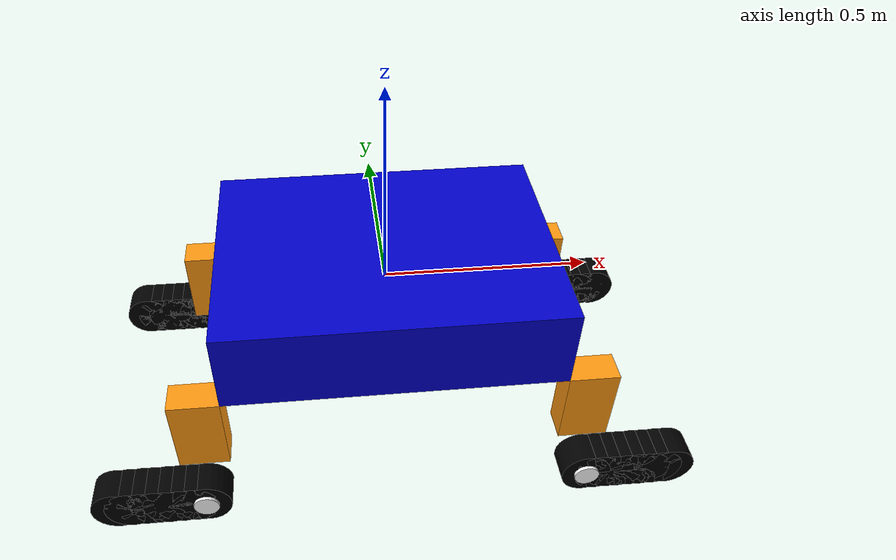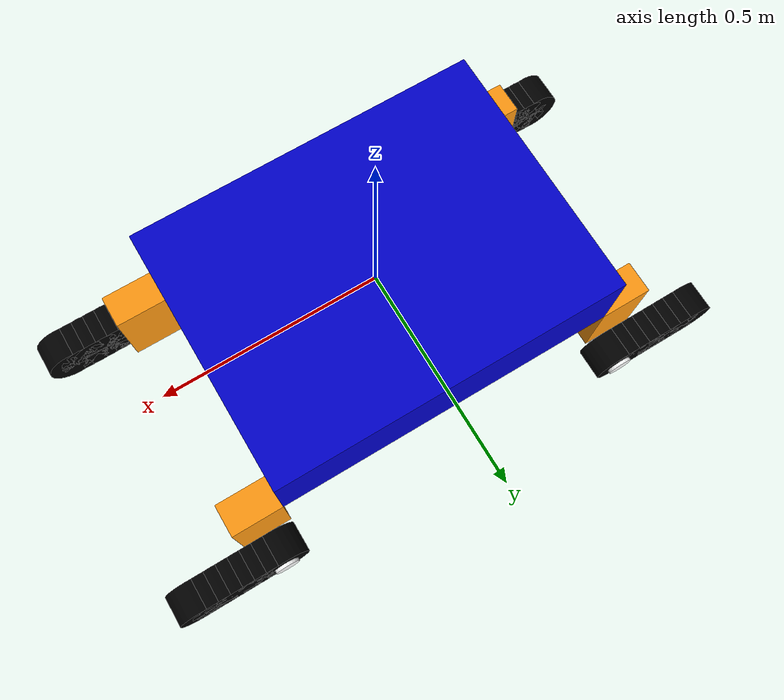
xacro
<?xml version="1.0"?>
<robot name="roscontrol" xmlns:xacro="http://ros.org/wiki/xacro">

  <material name="blue">
    <color rgba="0 0 0.8 1"/>
  </material>
  <material name="black">
    <color rgba="0 0 0 1"/>
  </material>
  <material name="white">
    <color rgba="1 1 1 1"/>
  </material>
  <material name="orange">
    <color rgba="255 153 18 1"/>
  </material>

  <xacro:macro name="default_inertial" params="mass">
    <inertial>
      <mass value="${mass}" />
      <inertia ixx="1.0" ixy="0.0" ixz="0.0" iyy="1.0" iyz="0.0" izz="1.0" />
    </inertial>
  </xacro:macro>

  <link name="base_link">
    <visual>
      <geometry>
        <box size="0.8 0.6 0.2"/>
      </geometry>
      <material name="blue"/>
    </visual>
    <collision>
      <geometry>
        <box size="0.8 0.6 0.2"/>
      </geometry>
    </collision>
    <xacro:default_inertial mass="10"/>
  </link>

  <link name="right_front_leg">
    <visual>
      <geometry>
        <box size="0.12 0.075 0.2"/>
      </geometry>
      <material name="orange"/>
    </visual>
    <collision>
      <geometry>
        <box size="0.12 0.075 0.2"/>
      </geometry>
    </collision>
    <xacro:default_inertial mass="2"/>
  </link>
  <joint name="right_front_leg_joint" type="fixed">
    <parent link="base_link"/>
    <child link="right_front_leg"/>
    <origin xyz="0.46 -0.2625 -0.2" rpy="0 0 0"/>
  </joint>

  <link name="left_front_leg">
    <visual>
      <geometry>
        <box size="0.12 0.075 0.2"/>
      </geometry>
      <material name="orange"/>
    </visual>
    <collision>
      <geometry>
        <box size="0.12 0.075 0.2"/>
      </geometry>
    </collision>
    <xacro:default_inertial mass="2"/>
  </link>
  <joint name="left_front_leg_joint" type="fixed">
    <parent link="base_link"/>
    <child link="left_front_leg"/>
    <origin xyz="0.46 0.2625 -0.2" rpy="0 0 0"/>
  </joint>

  <link name="left_back_leg">
    <visual>
      <geometry>
        <box size="0.12 0.075 0.2"/>
      </geometry>
      <material name="orange"/>
    </visual>
    <collision>
      <geometry>
        <box size="0.12 0.075 0.2"/>
      </geometry>
    </collision>
    <xacro:default_inertial mass="2"/>
  </link>
  <joint name="left_back_leg_joint" type="fixed">
    <parent link="base_link"/>
    <child link="left_back_leg"/>
    <origin xyz="-0.46 0.2625 -0.2" rpy="0 0 0"/>
  </joint>

  <link name="right_back_leg">
    <visual>
      <geometry>
        <box size="0.12 0.075 0.2"/>
      </geometry>
      <material name="orange"/>
    </visual>
    <collision>
      <geometry>
        <box size="0.12 0.075 0.2"/>
      </geometry>
    </collision>
    <xacro:default_inertial mass="2"/>
  </link>
  <joint name="right_back_leg_joint" type="fixed">
    <parent link="base_link"/>
    <child link="right_back_leg"/>
    <origin xyz="-0.46 -0.2625 -0.2" rpy="0 0 0"/>
  </joint>

  <xacro:macro name="wheel" params="prefix suffix num pos1 pos2">

    <link name="${prefix}_${suffix}_wheel_${num}">
      <visual>
        <origin xyz="0 0 0" rpy="1.5707 0 0" />
        <geometry>
          <cylinder radius="0.06" length="0.075"/>
        </geometry>
        <material name="black"/>
      </visual>
      <collision>
        <origin xyz="0 0 0" rpy="1.5707 0 0" />
        <geometry>
          <cylinder radius="0.06" length="0.075"/>
        </geometry>
      </collision>
      <xacro:default_inertial mass="1"/>
    </link>
    <joint name="${prefix}_${suffix}_wheel_${num}_joint" type="continuous">
      <axis xyz="0 1 0" rpy="0 0 0" />
      <parent link="${prefix}_${suffix}_base"/>
      <child link="${prefix}_${suffix}_wheel_${num}"/>
      <origin xyz="${pos2*(num-1)*0.03} 0 0" rpy="0 0 0"/>
    </joint>

    <!-- This block provides the simulator (Gazebo) with information on a few additional
    physical properties. See http://gazebosim.org/tutorials/?tut=ros_urdf for more-->
    <gazebo reference="${prefix}_${suffix}_wheel_${num}">
      <mu1 value="200.0"/>
      <mu2 value="100.0"/>
      <kp value="10000000.0" />
      <kd value="1.0" />
      <material>Gazebo/Grey</material>
    </gazebo>

    <!-- This block connects the wheel joint to an actuator (motor), which informs both
    simulation and visualization of the robot -->
    <transmission name="${prefix}_${suffix}_wheel_${num}_trans">
      <type>transmission_interface/SimpleTransmission</type>
      <actuator name="${prefix}_${suffix}_wheel_${num}_motor">
        <mechanicalReduction>1</mechanicalReduction>
      </actuator>
      <joint name="${prefix}_${suffix}_wheel_${num}_joint">
        <hardwareInterface>VelocityJointInterface</hardwareInterface>
      </joint>
    </transmission>

  </xacro:macro>

  <xacro:wheel prefix="left" suffix="front" num="1" pos1="1" pos2="1"/>
  <xacro:wheel prefix="left" suffix="back" num="1" pos1="1" pos2="-1"/>
  <xacro:wheel prefix="right" suffix="front" num="1" pos1="-1" pos2="1"/>
  <xacro:wheel prefix="right" suffix="back" num="1" pos1="-1" pos2="-1"/>
  <xacro:wheel prefix="left" suffix="front" num="2" pos1="1" pos2="1"/>
  <xacro:wheel prefix="left" suffix="back" num="2" pos1="1" pos2="-1"/>
  <xacro:wheel prefix="right" suffix="front" num="2" pos1="-1" pos2="1"/>
  <xacro:wheel prefix="right" suffix="back" num="2" pos1="-1" pos2="-1"/>
  <xacro:wheel prefix="left" suffix="front" num="3" pos1="1" pos2="1"/>
  <xacro:wheel prefix="left" suffix="back" num="3" pos1="1" pos2="-1"/>
  <xacro:wheel prefix="right" suffix="front" num="3" pos1="-1" pos2="1"/>
  <xacro:wheel prefix="right" suffix="back" num="3" pos1="-1" pos2="-1"/>
  <xacro:wheel prefix="left" suffix="front" num="4" pos1="1" pos2="1"/>
  <xacro:wheel prefix="left" suffix="back" num="4" pos1="1" pos2="-1"/>
  <xacro:wheel prefix="right" suffix="front" num="4" pos1="-1" pos2="1"/>
  <xacro:wheel prefix="right" suffix="back" num="4" pos1="-1" pos2="-1"/>
  <xacro:wheel prefix="left" suffix="front" num="5" pos1="1" pos2="1"/>
  <xacro:wheel prefix="left" suffix="back" num="5" pos1="1" pos2="-1"/>
  <xacro:wheel prefix="right" suffix="front" num="5" pos1="-1" pos2="1"/>
  <xacro:wheel prefix="right" suffix="back" num="5" pos1="-1" pos2="-1"/>
  <xacro:wheel prefix="left" suffix="front" num="6" pos1="1" pos2="1"/>
  <xacro:wheel prefix="left" suffix="back" num="6" pos1="1" pos2="-1"/>
  <xacro:wheel prefix="right" suffix="front" num="6" pos1="-1" pos2="1"/>
  <xacro:wheel prefix="right" suffix="back" num="6" pos1="-1" pos2="-1"/>
  <xacro:wheel prefix="left" suffix="front" num="7" pos1="1" pos2="1"/>
  <xacro:wheel prefix="left" suffix="back" num="7" pos1="1" pos2="-1"/>
  <xacro:wheel prefix="right" suffix="front" num="7" pos1="-1" pos2="1"/>
  <xacro:wheel prefix="right" suffix="back" num="7" pos1="-1" pos2="-1"/>
  <xacro:wheel prefix="left" suffix="front" num="8" pos1="1" pos2="1"/>
  <xacro:wheel prefix="left" suffix="back" num="8" pos1="1" pos2="-1"/>
  <xacro:wheel prefix="right" suffix="front" num="8" pos1="-1" pos2="1"/>
  <xacro:wheel prefix="right" suffix="back" num="8" pos1="-1" pos2="-1"/>

  <link name="right_front_base">
   <visual>
     <origin xyz="0 0 0" rpy="1.5707 0 0" />
     <geometry>
       <cylinder radius="0.03" length="0.09"/>
     </geometry>
     <material name="white"/>
   </visual>
   <collision>
     <origin xyz="0 0 0" rpy="1.5707 0 0" />
     <geometry>
       <cylinder radius="0.03" length="0.09"/>
     </geometry>
   </collision>
   <xacro:default_inertial mass="1"/>
  </link>

  <joint name="right_front_base_joint" type="continuous">
    <parent link="right_front_leg"/>
    <child link="right_front_base"/>
    <axis xyz="0 1 0"/>
    <origin xyz="0 -0.075 -0.16" rpy="0 0 0"/>
    <limit effort="30" velocity="1.0"/>
    <dynamics damping="0.0" friction="0.0"/>
  </joint>

  <transmission name="right_front_base_trans">
    <type>transmission_interface/SimpleTransmission</type>
    <actuator name="$right_front_base_motor">
      <mechanicalReduction>1</mechanicalReduction>
    </actuator>
    <joint name="right_front_base_joint">
      <hardwareInterface>PositionJointInterface</hardwareInterface>
    </joint>
  </transmission>

  <link name="left_front_base">
   <visual>
     <origin xyz="0 0 0" rpy="1.5707 0 0" />
     <geometry>
       <cylinder radius="0.03" length="0.09"/>
     </geometry>
     <material name="white"/>
   </visual>
   <collision>
     <origin xyz="0 0 0" rpy="1.5707 0 0" />
     <geometry>
       <cylinder radius="0.03" length="0.09"/>
     </geometry>
   </collision>
   <xacro:default_inertial mass="1"/>
  </link>

  <joint name="left_front_base_joint" type="continuous">
    <parent link="left_front_leg"/>
    <child link="left_front_base"/>
    <axis xyz="0 1 0"/>
    <origin xyz="0 0.075 -0.16" rpy="0 0 0"/>
    <limit effort="30" velocity="1.0"/>
    <dynamics damping="0.0" friction="0.0"/>
  </joint>

  <transmission name="left_front_base_trans">
    <type>transmission_interface/SimpleTransmission</type>
    <actuator name="$left_front_base_motor">
      <mechanicalReduction>1</mechanicalReduction>
    </actuator>
    <joint name="left_front_base_joint">
      <hardwareInterface>PositionJointInterface</hardwareInterface>
    </joint>
  </transmission>

  <link name="right_back_base">
   <visual>
     <origin xyz="0 0 0" rpy="1.5707 0 0" />
     <geometry>
       <cylinder radius="0.03" length="0.09"/>
     </geometry>
     <material name="white"/>
   </visual>
   <collision>
     <origin xyz="0 0 0" rpy="1.5707 0 0" />
     <geometry>
       <cylinder radius="0.03" length="0.09"/>
     </geometry>
   </collision>
   <xacro:default_inertial mass="1"/>
  </link>

  <joint name="right_back_base_joint" type="continuous">
    <parent link="right_back_leg"/>
    <child link="right_back_base"/>
    <axis xyz="0 1 0"/>
    <origin xyz="0 -0.075 -0.16" rpy="0 0 0"/>
    <limit effort="30" velocity="1.0"/>
    <dynamics damping="0.0" friction="0.0"/>
  </joint>

  <transmission name="right_back_base_trans">
    <type>transmission_interface/SimpleTransmission</type>
    <actuator name="$right_back_base_motor">
      <mechanicalReduction>1</mechanicalReduction>
    </actuator>
    <joint name="right_back_base_joint">
      <hardwareInterface>PositionJointInterface</hardwareInterface>
    </joint>
  </transmission>

  <link name="left_back_base">
   <visual>
     <origin xyz="0 0 0" rpy="1.5707 0 0" />
     <geometry>
       <cylinder radius="0.03" length="0.09"/>
     </geometry>
     <material name="white"/>
   </visual>
   <collision>
     <origin xyz="0 0 0" rpy="1.5707 0 0" />
     <geometry>
       <cylinder radius="0.03" length="0.09"/>
     </geometry>
   </collision>
   <xacro:default_inertial mass="1"/>
  </link>

  <joint name="left_back_base_joint" type="continuous">
    <parent link="left_back_leg"/>
    <child link="left_back_base"/>
    <axis xyz="0 1 0"/>
    <origin xyz="0 0.075 -0.16" rpy="0 0 0"/>
    <limit effort="30" velocity="1.0"/>
    <dynamics damping="0.0" friction="0.0"/>
  </joint>

  <transmission name="left_back_base_trans">
    <type>transmission_interface/SimpleTransmission</type>
    <actuator name="$left_back_base_motor">
      <mechanicalReduction>1</mechanicalReduction>
    </actuator>
    <joint name="left_back_base_joint">
      <hardwareInterface>PositionJointInterface</hardwareInterface>
    </joint>
  </transmission>

  <gazebo>
    <plugin name="gazebo_ros_control" filename="libgazebo_ros_control.so">
      <robotNamespace>/</robotNamespace>
    </plugin>
  </gazebo>

</robot>
